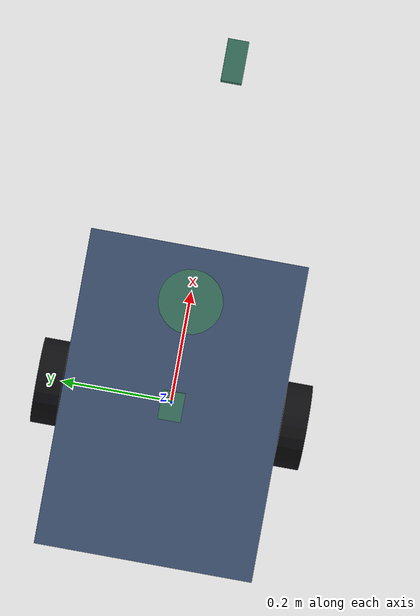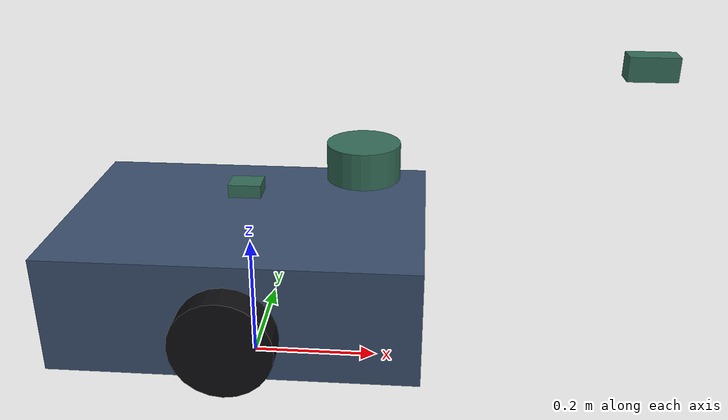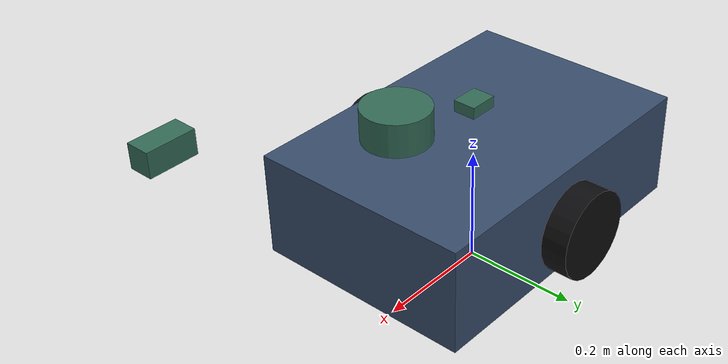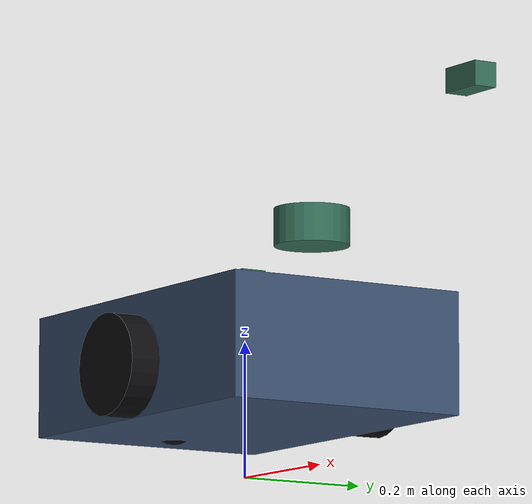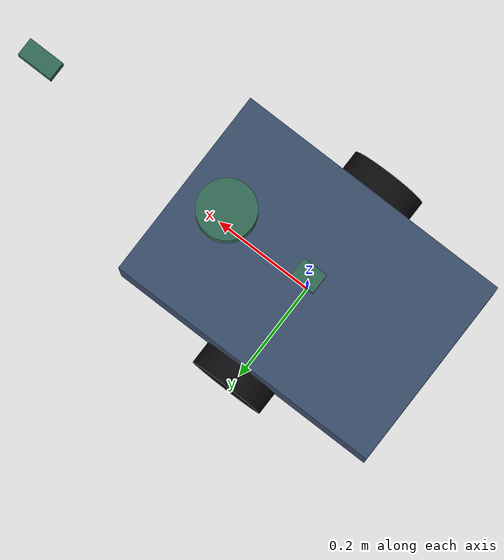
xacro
<?xml version="1.0"?>
<robot xmlns:xacro="http://www.ros.org/wiki/xacro" name="mobile_robot">
  <xacro:arg name="use_gazebo" default="false"/>
  <xacro:arg name="use_ros2_control_hardware" default="false"/>
  <xacro:arg name="ros2_control_backend" default="mock"/>
  <xacro:arg name="ros2_control_serial_device" default="/dev/ttyUSB0"/>
  <xacro:arg name="ros2_control_serial_baud" default="115200"/>
  <xacro:arg name="ros2_control_udp_host" default="192.168.1.10"/>
  <xacro:arg name="ros2_control_udp_port" default="9000"/>
  <xacro:arg name="ros2_control_protocol" default="text"/>
  <xacro:arg name="ros2_control_chassis_type" default="diff_drive"/>
  <xacro:property name="base_length" value="0.55"/>
  <xacro:property name="base_width" value="0.38"/>
  <xacro:property name="base_height" value="0.18"/>
  <xacro:property name="wheel_radius" value="0.075"/>
  <xacro:property name="wheel_width" value="0.045"/>
  <xacro:property name="wheel_separation" value="0.43"/>
  <!-- Authoritative RGB-D camera extrinsic; Factory Patrol SDF assets mirror it. -->
  <xacro:property name="camera_x" value="0.58"/>
  <xacro:property name="camera_y" value="0.0"/>
  <xacro:property name="camera_z" value="0.42"/>

  <material name="body_blue"><color rgba="0.22 0.30 0.42 1.0"/></material>
  <material name="wheel_black"><color rgba="0.05 0.05 0.06 1.0"/></material>
  <material name="sensor_green"><color rgba="0.20 0.42 0.34 1.0"/></material>

  <link name="base_footprint"/>

  <joint name="base_footprint_joint" type="fixed">
    <parent link="base_footprint"/>
    <child link="base_link"/>
    <origin xyz="0 0 ${wheel_radius}" rpy="0 0 0"/>
  </joint>

  <link name="base_link">
    <visual>
      <origin xyz="0 0 ${base_height / 2.0}" rpy="0 0 0"/>
      <geometry><box size="${base_length} ${base_width} ${base_height}"/></geometry>
      <material name="body_blue"/>
    </visual>
    <collision>
      <origin xyz="0 0 ${base_height / 2.0}" rpy="0 0 0"/>
      <geometry><box size="${base_length} ${base_width} ${base_height}"/></geometry>
    </collision>
    <inertial>
      <origin xyz="0 0 ${base_height / 2.0}" rpy="0 0 0"/>
      <mass value="12.0"/>
      <inertia ixx="0.18" ixy="0" ixz="0" iyy="0.28" iyz="0" izz="0.36"/>
    </inertial>
  </link>

  <xacro:macro name="drive_wheel" params="prefix y">
    <link name="${prefix}_wheel">
      <visual>
        <origin xyz="0 0 0" rpy="1.57079632679 0 0"/>
        <geometry><cylinder radius="${wheel_radius}" length="${wheel_width}"/></geometry>
        <material name="wheel_black"/>
      </visual>
      <collision>
        <origin xyz="0 0 0" rpy="1.57079632679 0 0"/>
        <geometry><cylinder radius="${wheel_radius}" length="${wheel_width}"/></geometry>
      </collision>
      <inertial>
        <mass value="0.7"/>
        <inertia ixx="0.002" ixy="0" ixz="0" iyy="0.002" iyz="0" izz="0.002"/>
      </inertial>
    </link>
    <joint name="${prefix}_wheel_joint" type="continuous">
      <parent link="base_link"/>
      <child link="${prefix}_wheel"/>
      <origin xyz="0 ${y} ${wheel_radius}" rpy="0 0 0"/>
      <axis xyz="0 1 0"/>
    </joint>
  </xacro:macro>

  <xacro:drive_wheel prefix="left" y="${wheel_separation / 2.0}"/>
  <xacro:drive_wheel prefix="right" y="${-wheel_separation / 2.0}"/>

  <link name="caster_wheel">
    <visual><geometry><sphere radius="0.04"/></geometry><material name="wheel_black"/></visual>
    <collision><geometry><sphere radius="0.04"/></geometry></collision>
    <inertial><mass value="0.2"/><inertia ixx="0.0002" ixy="0" ixz="0" iyy="0.0002" iyz="0" izz="0.0002"/></inertial>
  </link>
  <joint name="caster_wheel_joint" type="fixed">
    <parent link="base_link"/>
    <child link="caster_wheel"/>
    <origin xyz="-0.2 0 0.035" rpy="0 0 0"/>
  </joint>

  <link name="lidar_link">
    <visual><geometry><cylinder radius="0.055" length="0.055"/></geometry><material name="sensor_green"/></visual>
    <collision><geometry><cylinder radius="0.055" length="0.055"/></geometry></collision>
    <inertial><mass value="0.25"/><inertia ixx="0.0004" ixy="0" ixz="0" iyy="0.0004" iyz="0" izz="0.0004"/></inertial>
  </link>
  <joint name="lidar_joint" type="fixed">
    <parent link="base_link"/>
    <child link="lidar_link"/>
    <origin xyz="0.18 0 0.27" rpy="0 0 0"/>
  </joint>

  <link name="imu_link">
    <visual><geometry><box size="0.05 0.04 0.02"/></geometry><material name="sensor_green"/></visual>
    <collision><geometry><box size="0.05 0.04 0.02"/></geometry></collision>
    <inertial><mass value="0.05"/><inertia ixx="0.00005" ixy="0" ixz="0" iyy="0.00005" iyz="0" izz="0.00005"/></inertial>
  </link>
  <joint name="imu_joint" type="fixed">
    <parent link="base_link"/>
    <child link="imu_link"/>
    <origin xyz="0 0 0.22" rpy="0 0 0"/>
  </joint>

  <link name="camera_link">
    <visual><geometry><box size="0.07 0.035 0.035"/></geometry><material name="sensor_green"/></visual>
    <collision><geometry><box size="0.07 0.035 0.035"/></geometry></collision>
    <inertial><mass value="0.12"/><inertia ixx="0.0001" ixy="0" ixz="0" iyy="0.0001" iyz="0" izz="0.0001"/></inertial>
  </link>
  <joint name="camera_joint" type="fixed">
    <parent link="base_link"/>
    <child link="camera_link"/>
    <origin xyz="${camera_x} ${camera_y} ${camera_z}" rpy="0 0 0"/>
  </joint>

  <link name="camera_color_optical_frame"/>
  <joint name="camera_color_optical_joint" type="fixed">
    <parent link="camera_link"/>
    <child link="camera_color_optical_frame"/>
    <origin xyz="0 0 0" rpy="-1.57079632679 0 -1.57079632679"/>
  </joint>

  <xacro:if value="$(arg use_ros2_control_hardware)">
    <ros2_control name="MobileBaseSystem" type="system">
      <hardware>
        <plugin>robot_hardware/ChassisHardwareInterface</plugin>
        <param name="backend">$(arg ros2_control_backend)</param>
        <param name="serial_device">$(arg ros2_control_serial_device)</param>
        <param name="serial_baud">$(arg ros2_control_serial_baud)</param>
        <param name="udp_host">$(arg ros2_control_udp_host)</param>
        <param name="udp_port">$(arg ros2_control_udp_port)</param>
        <param name="protocol">$(arg ros2_control_protocol)</param>
        <param name="chassis_type">$(arg ros2_control_chassis_type)</param>
        <param name="wheel_diameter_m">0.15</param>
        <param name="wheel_base_m">0.42</param>
        <param name="track_width_m">0.43</param>
      </hardware>
      <joint name="left_wheel_joint">
        <command_interface name="velocity"/>
        <state_interface name="position"/>
        <state_interface name="velocity"/>
      </joint>
      <joint name="right_wheel_joint">
        <command_interface name="velocity"/>
        <state_interface name="position"/>
        <state_interface name="velocity"/>
      </joint>
    </ros2_control>
  </xacro:if>

  <xacro:if value="$(arg use_gazebo)">
    <ros2_control name="MobileBaseSystem" type="system">
      <hardware>
        <plugin>gz_ros2_control/GazeboSimSystem</plugin>
      </hardware>
      <joint name="left_wheel_joint">
        <command_interface name="velocity"/>
        <state_interface name="position"/>
        <state_interface name="velocity"/>
      </joint>
      <joint name="right_wheel_joint">
        <command_interface name="velocity"/>
        <state_interface name="position"/>
        <state_interface name="velocity"/>
      </joint>
    </ros2_control>

    <gazebo>
      <plugin filename="gz_ros2_control-system" name="gz_ros2_control::GazeboSimROS2ControlPlugin">
        <parameters>$(find robot_bringup)/config/controllers.yaml</parameters>
      </plugin>
    </gazebo>

    <gazebo reference="lidar_link">
      <sensor type="gpu_lidar" name="lidar">
        <topic>scan</topic>
        <update_rate>10</update_rate>
        <ray>
          <scan><horizontal><samples>360</samples><resolution>1</resolution><min_angle>-3.14159</min_angle><max_angle>3.14159</max_angle></horizontal></scan>
          <range><min>0.08</min><max>12.0</max><resolution>0.01</resolution></range>
        </ray>
      </sensor>
    </gazebo>

    <gazebo reference="imu_link">
      <sensor type="imu" name="imu">
        <topic>imu</topic>
        <update_rate>100</update_rate>
      </sensor>
    </gazebo>

    <gazebo reference="camera_link">
      <sensor type="rgbd_camera" name="rgbd_camera">
        <topic>/camera</topic>
        <gz_frame_id>camera_color_optical_frame</gz_frame_id>
        <update_rate>15</update_rate>
        <always_on>true</always_on>
        <visualize>false</visualize>
        <camera>
          <horizontal_fov>1.0471975512</horizontal_fov>
          <image>
            <width>640</width>
            <height>480</height>
          </image>
          <clip>
            <near>0.1</near>
            <far>10.0</far>
          </clip>
          <optical_frame_id>camera_color_optical_frame</optical_frame_id>
        </camera>
      </sensor>
    </gazebo>
  </xacro:if>
</robot>
